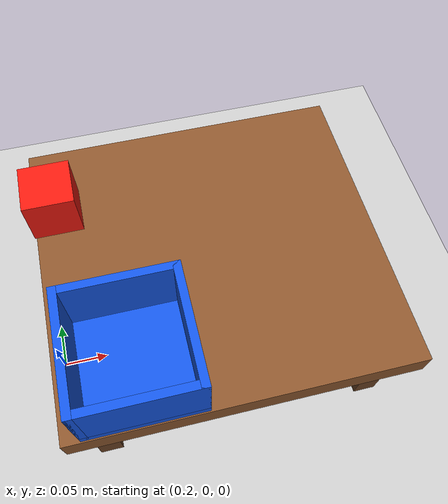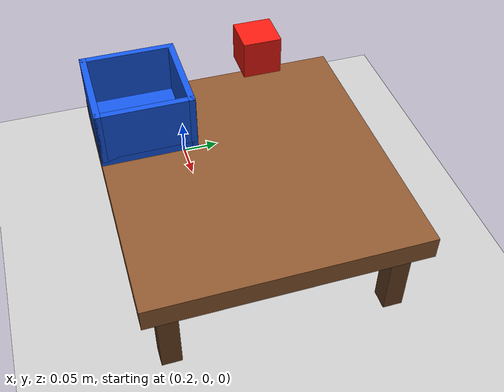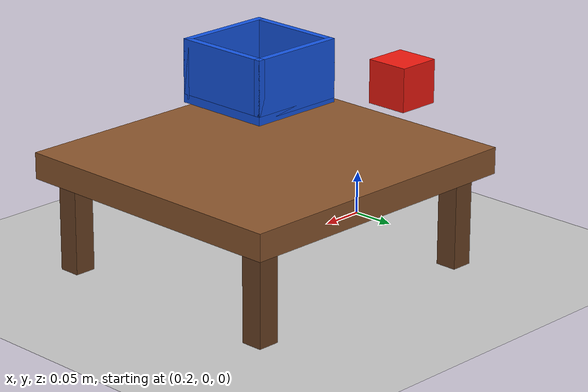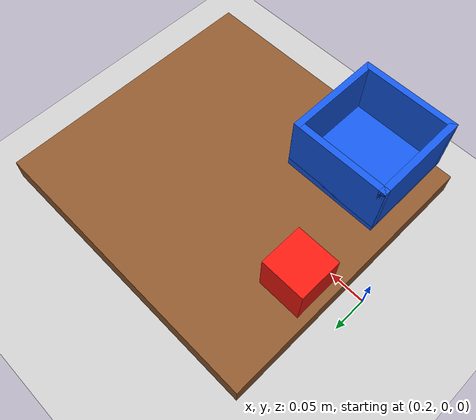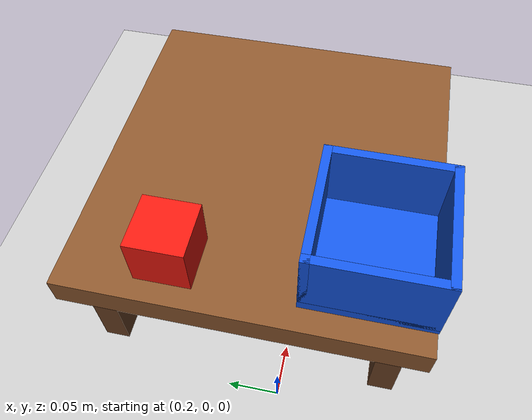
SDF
<?xml version="1.0" ?>

<sdf version="1.7">
  <world name="default">

    <plugin
      filename="gz-sim-physics-system"
      name="gz::sim::systems::Physics">
    </plugin>

    <plugin
      filename="gz-sim-user-commands-system"
      name="gz::sim::systems::UserCommands">
    </plugin>

    <plugin
      filename="gz-sim-scene-broadcaster-system"
      name="gz::sim::systems::SceneBroadcaster">
    </plugin>

    <plugin
      filename="gz-sim-sensors-system"
      name="gz::sim::systems::Sensors">
      <render_engine>ogre2</render_engine>
    </plugin>

    <plugin
      filename="gz-sim-imu-system"
      name="gz::sim::systems::Imu">
    </plugin>

    <light type="directional" name="sun">
      <cast_shadows>true</cast_shadows>
      <pose>0 0 10 0 0 0</pose>
      <diffuse>1 1 1 1</diffuse>
      <specular>0.5 0.5 0.5 1</specular>
      <attenuation>
        <range>1000</range>
        <constant>0.9</constant>
        <linear>0.01</linear>
        <quadratic>0.001</quadratic>
      </attenuation>
      <direction>-0.5 0.1 -0.9</direction>
    </light>

    <model name="ground_plane">
      <static>true</static>
      <link name="link">
        <collision name="collision">
          <geometry>
            <plane>
              <normal>0 0 1</normal>
              <size>100 100</size>
            </plane>
          </geometry>
          <surface>
            <friction>
              <ode>
                <mu>0.6</mu>
                <mu2>0.6</mu2>
              </ode>
            </friction>
          </surface>
        </collision>
        <visual name="visual">
          <geometry>
            <plane>
              <normal>0 0 1</normal>
              <size>100 100</size>
            </plane>
          </geometry>
          <material>
            <ambient>0.78 0.78 0.78 1</ambient>
            <diffuse>0.78 0.78 0.78 1</diffuse>
            <specular>0.2 0.2 0.2 1</specular>
          </material>
        </visual>
      </link>
    </model>

    <model name="task_table">
      <static>true</static>
      <pose>0.39 0.04 0 0 0 0</pose>
      <link name="tabletop">
        <pose>0 0 0.12 0 0 0</pose>
        <collision name="collision">
          <geometry>
            <box>
              <size>0.36 0.34 0.03</size>
            </box>
          </geometry>
          <surface>
            <friction>
              <ode>
                <mu>1.0</mu>
                <mu2>1.0</mu2>
              </ode>
            </friction>
          </surface>
        </collision>
        <visual name="visual">
          <geometry>
            <box>
              <size>0.36 0.34 0.03</size>
            </box>
          </geometry>
          <material>
            <ambient>0.45 0.28 0.14 1</ambient>
            <diffuse>0.55 0.34 0.18 1</diffuse>
            <specular>0.08 0.06 0.04 1</specular>
          </material>
        </visual>
      </link>
      <link name="front_left_leg">
        <pose>-0.15 0.14 0.055 0 0 0</pose>
        <collision name="collision">
          <geometry>
            <box>
              <size>0.025 0.025 0.11</size>
            </box>
          </geometry>
        </collision>
        <visual name="visual">
          <geometry>
            <box>
              <size>0.025 0.025 0.11</size>
            </box>
          </geometry>
          <material>
            <ambient>0.35 0.22 0.12 1</ambient>
            <diffuse>0.42 0.26 0.14 1</diffuse>
          </material>
        </visual>
      </link>
      <link name="front_right_leg">
        <pose>-0.15 -0.14 0.055 0 0 0</pose>
        <collision name="collision">
          <geometry>
            <box>
              <size>0.025 0.025 0.11</size>
            </box>
          </geometry>
        </collision>
        <visual name="visual">
          <geometry>
            <box>
              <size>0.025 0.025 0.11</size>
            </box>
          </geometry>
          <material>
            <ambient>0.35 0.22 0.12 1</ambient>
            <diffuse>0.42 0.26 0.14 1</diffuse>
          </material>
        </visual>
      </link>
      <link name="rear_left_leg">
        <pose>0.15 0.14 0.055 0 0 0</pose>
        <collision name="collision">
          <geometry>
            <box>
              <size>0.025 0.025 0.11</size>
            </box>
          </geometry>
        </collision>
        <visual name="visual">
          <geometry>
            <box>
              <size>0.025 0.025 0.11</size>
            </box>
          </geometry>
          <material>
            <ambient>0.35 0.22 0.12 1</ambient>
            <diffuse>0.42 0.26 0.14 1</diffuse>
          </material>
        </visual>
      </link>
      <link name="rear_right_leg">
        <pose>0.15 -0.14 0.055 0 0 0</pose>
        <collision name="collision">
          <geometry>
            <box>
              <size>0.025 0.025 0.11</size>
            </box>
          </geometry>
        </collision>
        <visual name="visual">
          <geometry>
            <box>
              <size>0.025 0.025 0.11</size>
            </box>
          </geometry>
          <material>
            <ambient>0.35 0.22 0.12 1</ambient>
            <diffuse>0.42 0.26 0.14 1</diffuse>
          </material>
        </visual>
      </link>
    </model>

    <model name="task_can">
      <pose>0.24 0.10 0.192 0 0 0</pose>
      <link name="link">
        <inertial>
          <mass>0.08</mass>
          <inertia>
            <ixx>0.00008</ixx>
            <ixy>0</ixy>
            <ixz>0</ixz>
            <iyy>0.00008</iyy>
            <iyz>0</iyz>
            <izz>0.00003</izz>
          </inertia>
        </inertial>
        <collision name="collision">
          <geometry>
            <box>
              <size>0.05 0.05 0.05 0.05</size>
            </box>
          </geometry>
          <surface>
            <friction>
              <ode>
                <mu>0.8</mu>
                <mu2>0.8</mu2>
              </ode>
            </friction>
            <contact>
              <ode>
                <kp>1000000.0</kp>
                <kd>1.0</kd>
                <min_depth>0.001</min_depth>
                <max_vel>0.1</max_vel>
              </ode>
            </contact>
          </surface>
        </collision>
        <visual name="visual">
          <geometry>
            <box>
              <size>0.05 0.05 0.05 0.05</size>
            </box>
          </geometry>
          <material>
            <ambient>0.85 0.08 0.05 1</ambient>
            <diffuse>0.95 0.10 0.06 1</diffuse>
            <specular>0.5 0.5 0.5 1</specular>
          </material>
        </visual>
      </link>
    </model>

    <model name="task_bin">
      <static>true</static>
      <pose>0.29 -0.07 0 0 0 0</pose>
      <link name="base">
        <pose>0 0 0.145 0 0 0</pose>
        <collision name="collision">
          <geometry>
            <box>
              <size>0.12 0.12 0.01</size>
            </box>
          </geometry>
        </collision>
        <visual name="visual">
          <geometry>
            <box>
              <size>0.12 0.12 0.01</size>
            </box>
          </geometry>
          <material>
            <ambient>0.05 0.25 0.75 1</ambient>
            <diffuse>0.08 0.34 0.90 1</diffuse>
          </material>
        </visual>
      </link>
      <link name="front_wall">
        <pose>-0.056 0 0.18 0 0 0</pose>
        <collision name="collision">
          <geometry>
            <box>
              <size>0.008 0.12 0.07</size>
            </box>
          </geometry>
        </collision>
        <visual name="visual">
          <geometry>
            <box>
              <size>0.008 0.12 0.07</size>
            </box>
          </geometry>
          <material>
            <ambient>0.05 0.25 0.75 1</ambient>
            <diffuse>0.08 0.34 0.90 1</diffuse>
          </material>
        </visual>
      </link>
      <link name="back_wall">
        <pose>0.056 0 0.18 0 0 0</pose>
        <collision name="collision">
          <geometry>
            <box>
              <size>0.008 0.12 0.07</size>
            </box>
          </geometry>
        </collision>
        <visual name="visual">
          <geometry>
            <box>
              <size>0.008 0.12 0.07</size>
            </box>
          </geometry>
          <material>
            <ambient>0.05 0.25 0.75 1</ambient>
            <diffuse>0.08 0.34 0.90 1</diffuse>
          </material>
        </visual>
      </link>
      <link name="left_wall">
        <pose>0 0.056 0.18 0 0 0</pose>
        <collision name="collision">
          <geometry>
            <box>
              <size>0.12 0.008 0.07</size>
            </box>
          </geometry>
        </collision>
        <visual name="visual">
          <geometry>
            <box>
              <size>0.12 0.008 0.07</size>
            </box>
          </geometry>
          <material>
            <ambient>0.05 0.25 0.75 1</ambient>
            <diffuse>0.08 0.34 0.90 1</diffuse>
          </material>
        </visual>
      </link>
      <link name="right_wall">
        <pose>0 -0.056 0.18 0 0 0</pose>
        <collision name="collision">
          <geometry>
            <box>
              <size>0.12 0.008 0.07</size>
            </box>
          </geometry>
        </collision>
        <visual name="visual">
          <geometry>
            <box>
              <size>0.12 0.008 0.07</size>
            </box>
          </geometry>
          <material>
            <ambient>0.05 0.25 0.75 1</ambient>
            <diffuse>0.08 0.34 0.90 1</diffuse>
          </material>
        </visual>
      </link>
    </model>

    <scene>
      <shadows>false</shadows>
    </scene>

  </world>
</sdf>
